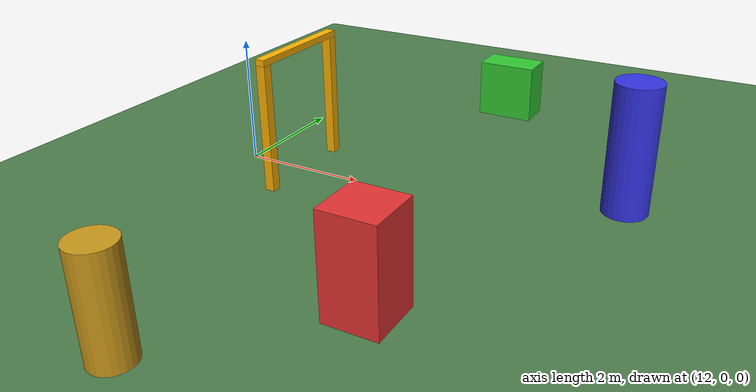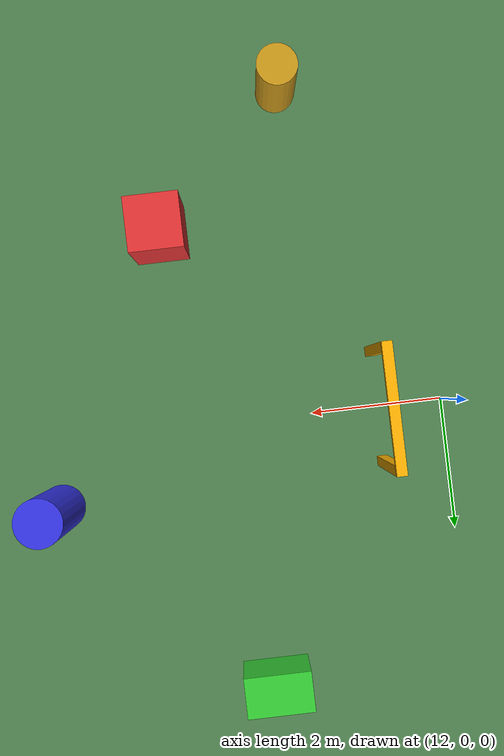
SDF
<?xml version="1.0" ?>
<sdf version="1.9">
  <world name="outdoor_field_px4">

    <physics type="ode">
      <max_step_size>0.004</max_step_size>
      <real_time_factor>1.0</real_time_factor>
      <real_time_update_rate>250</real_time_update_rate>
    </physics>
    <gravity>0 0 -9.8</gravity>
    <magnetic_field>6e-06 2.3e-05 -4.2e-05</magnetic_field>
    <atmosphere type="adiabatic"/>

    <scene>
      <ambient>1.0 1.0 1.0</ambient>
      <background>0.8 0.8 0.8</background>
      <shadows>true</shadows>
      <sky></sky>
    </scene>

    <!-- ── GUI — same camera feeds as outdoor_field.sdf so both firmwares look identical ── -->
    <gui fullscreen="0">
      <plugin filename="MinimalScene" name="3D View">
        <gz-gui>
          <title>3D View</title>
          <property type="bool" key="showTitleBar">false</property>
          <property type="string" key="state">docked</property>
        </gz-gui>
        <engine>ogre2</engine>
        <scene>scene</scene>
        <ambient_light>0.4 0.4 0.4</ambient_light>
        <background_color>0.8 0.8 0.8</background_color>
        <camera_pose>-5 0 8 0 0.8 0</camera_pose>
      </plugin>
      <plugin filename="EntityContextMenuPlugin" name="Entity context menu">
        <gz-gui>
          <property key="state" type="string">floating</property>
          <property key="width" type="double">5</property>
          <property key="height" type="double">5</property>
          <property key="showTitleBar" type="bool">false</property>
        </gz-gui>
      </plugin>
      <plugin filename="GzSceneManager" name="Scene Manager">
        <gz-gui>
          <property key="resizable" type="bool">false</property>
          <property key="width" type="double">5</property>
          <property key="height" type="double">5</property>
          <property key="state" type="string">floating</property>
          <property key="showTitleBar" type="bool">false</property>
        </gz-gui>
      </plugin>
      <plugin filename="InteractiveViewControl" name="Interactive view control">
        <gz-gui>
          <property key="resizable" type="bool">false</property>
          <property key="width" type="double">5</property>
          <property key="height" type="double">5</property>
          <property key="state" type="string">floating</property>
          <property key="showTitleBar" type="bool">false</property>
        </gz-gui>
      </plugin>
      <plugin filename="CameraTracking" name="Camera Tracking">
        <gz-gui>
          <property key="resizable" type="bool">false</property>
          <property key="width" type="double">5</property>
          <property key="height" type="double">5</property>
          <property key="state" type="string">floating</property>
          <property key="showTitleBar" type="bool">false</property>
        </gz-gui>
      </plugin>
      <plugin filename="WorldControl" name="World control">
        <gz-gui>
          <title>World control</title>
          <property type="bool" key="showTitleBar">false</property>
          <property type="bool" key="resizable">false</property>
          <property type="double" key="height">72</property>
          <property type="double" key="width">145</property>
          <property type="double" key="z">1</property>
          <property type="string" key="state">floating</property>
          <anchors target="3D View">
            <line own="left" target="left"/>
            <line own="bottom" target="bottom"/>
          </anchors>
        </gz-gui>
        <play_pause>true</play_pause>
        <step>true</step>
        <start_paused>false</start_paused>
      </plugin>
      <plugin filename="WorldStats" name="World stats">
        <gz-gui>
          <title>World stats</title>
          <property type="bool" key="showTitleBar">false</property>
          <property type="bool" key="resizable">false</property>
          <property type="double" key="height">110</property>
          <property type="double" key="width">290</property>
          <property type="double" key="z">1</property>
          <property type="string" key="state">floating</property>
          <anchors target="3D View">
            <line own="right" target="right"/>
            <line own="bottom" target="bottom"/>
          </anchors>
        </gz-gui>
        <sim_time>true</sim_time>
        <real_time>true</real_time>
        <real_time_factor>true</real_time_factor>
        <iterations>false</iterations>
      </plugin>
      <plugin filename="ImageDisplay" name="Front Camera RGB">
        <gz-gui>
          <property type="string" key="state">docked_collapsed</property>
        </gz-gui>
        <topic>/front_camera/image</topic>
      </plugin>
      <plugin filename="ImageDisplay" name="Front Camera Depth">
        <gz-gui>
          <property type="string" key="state">docked_collapsed</property>
        </gz-gui>
        <topic>/front_camera/depth_image</topic>
      </plugin>
      <plugin filename="ImageDisplay" name="Down Camera">
        <gz-gui>
          <property type="string" key="state">docked_collapsed</property>
        </gz-gui>
        <topic>/down_camera</topic>
      </plugin>
      <plugin filename="TopicEcho" name="Topic Echo">
        <gz-gui>
          <property type="string" key="state">docked_collapsed</property>
        </gz-gui>
      </plugin>
    </gui>

    <spherical_coordinates>
      <surface_model>EARTH_WGS84</surface_model>
      <world_frame_orientation>ENU</world_frame_orientation>
      <latitude_deg>0.0</latitude_deg>
      <longitude_deg>40.0</longitude_deg>
      <elevation>0</elevation>
      <heading_deg>0</heading_deg>
    </spherical_coordinates>

    <light type="directional" name="sun">
      <cast_shadows>true</cast_shadows>
      <pose>0 0 10 0 0 0</pose>
      <diffuse>0.8 0.8 0.8 1</diffuse>
      <specular>0.8 0.8 0.8 1</specular>
      <attenuation>
        <range>1000</range>
        <constant>0.9</constant>
        <linear>0.01</linear>
        <quadratic>0.001</quadratic>
      </attenuation>
      <direction>-0.5 0.1 -0.9</direction>
    </light>

    <model name="ground_plane">
      <static>true</static>
      <link name="link">
        <collision name="collision">
          <geometry>
            <plane>
              <normal>0 0 1</normal>
              <size>200 200</size>
            </plane>
          </geometry>
        </collision>
        <visual name="visual">
          <geometry>
            <plane>
              <normal>0 0 1</normal>
              <size>200 200</size>
            </plane>
          </geometry>
          <material>
            <ambient>0.3 0.5 0.3 1</ambient>
            <diffuse>0.3 0.5 0.3 1</diffuse>
          </material>
        </visual>
      </link>
    </model>

    <!-- Shared scenery (gate + obstacle field) — same model the ArduPilot world uses -->
    <include>
      <uri>model://outdoor_field_scenery</uri>
    </include>

    <!-- Drone is NOT embedded; PX4 spawns x500_nectar at startup
         (PX4_SIM_MODEL=gz_x500_nectar). x500_nectar carries the
         matched sensor suite (front RGBD, down RGB, down lidar). -->

  </world>
</sdf>

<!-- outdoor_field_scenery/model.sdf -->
<sdf version="1.9">
  <model name="outdoor_field_scenery">
    <static>true</static>

    <!-- Gate — two posts + crossbar, ~1.5m wide, ~2m high -->
    <link name="gate_left_post">
      <pose>13 -0.85 1.0 0 0 0</pose>
      <collision name="collision">
        <geometry><box><size>0.15 0.15 2.0</size></box></geometry>
      </collision>
      <visual name="visual">
        <geometry><box><size>0.15 0.15 2.0</size></box></geometry>
        <material>
          <ambient>0.9 0.6 0.0 1</ambient>
          <diffuse>1.0 0.7 0.0 1</diffuse>
        </material>
      </visual>
    </link>
    <link name="gate_right_post">
      <pose>13 0.85 1.0 0 0 0</pose>
      <collision name="collision">
        <geometry><box><size>0.15 0.15 2.0</size></box></geometry>
      </collision>
      <visual name="visual">
        <geometry><box><size>0.15 0.15 2.0</size></box></geometry>
        <material>
          <ambient>0.9 0.6 0.0 1</ambient>
          <diffuse>1.0 0.7 0.0 1</diffuse>
        </material>
      </visual>
    </link>
    <link name="gate_crossbar">
      <pose>13 0 2.05 0 0 0</pose>
      <collision name="collision">
        <geometry><box><size>0.15 1.85 0.1</size></box></geometry>
      </collision>
      <visual name="visual">
        <geometry><box><size>0.15 1.85 0.1</size></box></geometry>
        <material>
          <ambient>0.9 0.6 0.0 1</ambient>
          <diffuse>1.0 0.7 0.0 1</diffuse>
        </material>
      </visual>
    </link>

    <!-- Obstacle boxes -->
    <link name="obstacle_box_1">
      <pose>16 -3 0.75 0 0 0</pose>
      <collision name="collision">
        <geometry><box><size>0.8 0.8 1.5</size></box></geometry>
      </collision>
      <visual name="visual">
        <geometry><box><size>0.8 0.8 1.5</size></box></geometry>
        <material>
          <ambient>0.8 0.2 0.2 1</ambient>
          <diffuse>0.9 0.2 0.2 1</diffuse>
        </material>
      </visual>
    </link>
    <link name="obstacle_box_2">
      <pose>15 4 0.5 0 0 0</pose>
      <collision name="collision">
        <geometry><box><size>1.0 0.6 1.0</size></box></geometry>
      </collision>
      <visual name="visual">
        <geometry><box><size>1.0 0.6 1.0</size></box></geometry>
        <material>
          <ambient>0.2 0.7 0.2 1</ambient>
          <diffuse>0.2 0.8 0.2 1</diffuse>
        </material>
      </visual>
    </link>

    <!-- Obstacle cylinders -->
    <link name="obstacle_cylinder_1">
      <pose>18 1 1.0 0 0 0</pose>
      <collision name="collision">
        <geometry><cylinder><radius>0.35</radius><length>2.0</length></cylinder></geometry>
      </collision>
      <visual name="visual">
        <geometry><cylinder><radius>0.35</radius><length>2.0</length></cylinder></geometry>
        <material>
          <ambient>0.2 0.2 0.8 1</ambient>
          <diffuse>0.2 0.2 0.9 1</diffuse>
        </material>
      </visual>
    </link>
    <link name="obstacle_cylinder_2">
      <pose>14 -5 0.75 0 0 0</pose>
      <collision name="collision">
        <geometry><cylinder><radius>0.3</radius><length>1.5</length></cylinder></geometry>
      </collision>
      <visual name="visual">
        <geometry><cylinder><radius>0.3</radius><length>1.5</length></cylinder></geometry>
        <material>
          <ambient>0.7 0.5 0.1 1</ambient>
          <diffuse>0.8 0.6 0.1 1</diffuse>
        </material>
      </visual>
    </link>

  </model>
</sdf>
